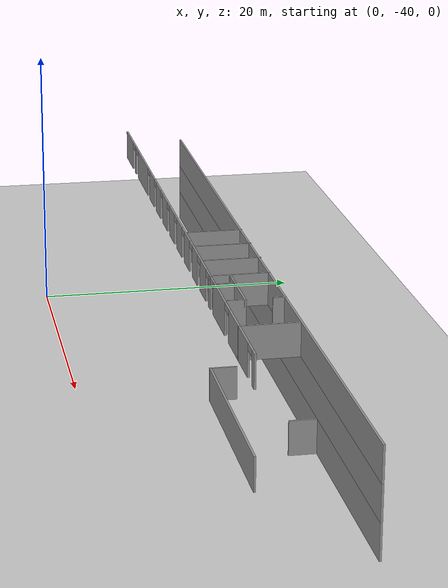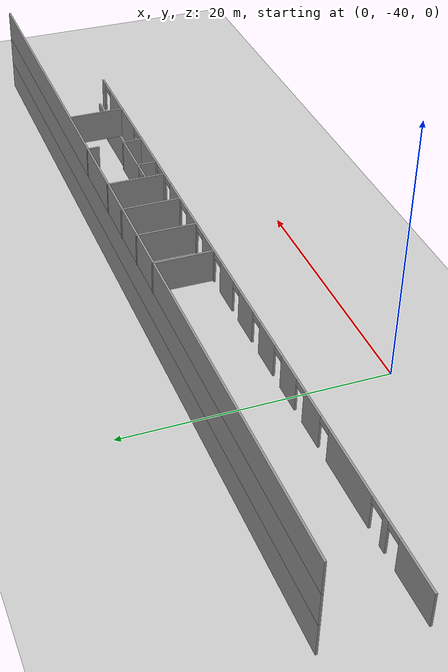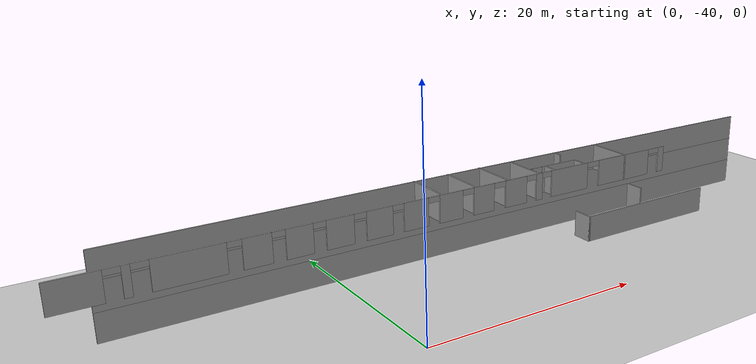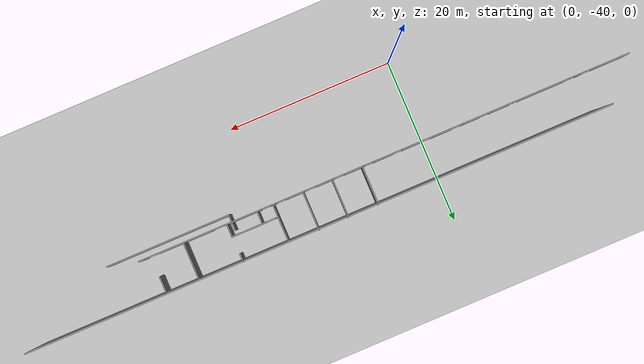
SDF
<sdf version="1.7">
 <world name="default">
  <model name="ground_plane">
   <static>1</static>
   <link name="link">
    <collision name="collision">
     <geometry><plane><normal>0 0 1</normal><size>100 100</size></plane></geometry>
     <surface><friction><ode><mu>100</mu><mu2>50</mu2></ode></friction></surface>
    </collision>
    <visual name="visual">
     <cast_shadows>0</cast_shadows>
     <geometry><plane><normal>0 0 1</normal><size>100 100</size></plane></geometry>
     <material>
      <script><uri>file://media/materials/scripts/gazebo.material</uri><name>Gazebo/Grey</name></script>
     </material>
    </visual>
   </link>
  </model>
  <model name="Anselm_Turmeda">
   <pose>-32.7988 -2.37459 0 0 -0 0</pose>
   <link name="Wall_106">
    <pose>38.1826 -27.4319 5 0 -0 3.14159</pose>
    <visual name="Wall_106_Visual_0">
     <pose>-28.3771 0 1.25 0 -0 0</pose>
     <geometry><box><size>0.745891 0.15 2.5</size></box></geometry>
     <material>
      <script><uri>file://media/materials/scripts/gazebo.material</uri><name>Gazebo/Grey</name></script>
      <ambient>1 1 1 1</ambient>
     </material>
     <meta><layer>2</layer></meta>
    </visual>
    <collision name="Wall_106_Collision_0">
     <geometry><box><size>0.745891 0.15 2.5</size></box></geometry>
     <pose>-28.3771 0 1.25 0 -0 0</pose>
    </collision>
    <visual name="Wall_106_Visual_1">
     <pose>-23.4274 0 1.25 0 -0 0</pose>
     <geometry><box><size>6.45543 0.15 2.5</size></box></geometry>
     <material>
      <script><uri>file://media/materials/scripts/gazebo.material</uri><name>Gazebo/Grey</name></script>
      <ambient>1 1 1 1</ambient>
     </material>
     <meta><layer>2</layer></meta>
    </visual>
    <collision name="Wall_106_Collision_1">
     <geometry><box><size>6.45543 0.15 2.5</size></box></geometry>
     <pose>-23.4274 0 1.25 0 -0 0</pose>
    </collision>
    <visual name="Wall_106_Visual_2">
     <pose>-16.5905 0 1.25 0 -0 0</pose>
     <geometry><box><size>4.3493 0.15 2.5</size></box></geometry>
     <material>
      <script><uri>file://media/materials/scripts/gazebo.material</uri><name>Gazebo/Grey</name></script>
      <ambient>1 1 1 1</ambient>
     </material>
     <meta><layer>2</layer></meta>
    </visual>
    <collision name="Wall_106_Collision_2">
     <geometry><box><size>4.3493 0.15 2.5</size></box></geometry>
     <pose>-16.5905 0 1.25 0 -0 0</pose>
    </collision>
    <visual name="Wall_106_Visual_3">
     <pose>-12.9983 0 1.25 0 -0 0</pose>
     <geometry><box><size>0.692963 0.15 2.5</size></box></geometry>
     <material>
      <script><uri>file://media/materials/scripts/gazebo.material</uri><name>Gazebo/Grey</name></script>
      <ambient>1 1 1 1</ambient>
     </material>
     <meta><layer>2</layer></meta>
    </visual>
    <collision name="Wall_106_Collision_3">
     <geometry><box><size>0.692963 0.15 2.5</size></box></geometry>
     <pose>-12.9983 0 1.25 0 -0 0</pose>
    </collision>
    <visual name="Wall_106_Visual_4">
     <pose>-10.3843 0 1.25 0 -0 0</pose>
     <geometry><box><size>2.35007 0.15 2.5</size></box></geometry>
     <material>
      <script><uri>file://media/materials/scripts/gazebo.material</uri><name>Gazebo/Grey</name></script>
      <ambient>1 1 1 1</ambient>
     </material>
     <meta><layer>2</layer></meta>
    </visual>
    <collision name="Wall_106_Collision_4">
     <geometry><box><size>2.35007 0.15 2.5</size></box></geometry>
     <pose>-10.3843 0 1.25 0 -0 0</pose>
    </collision>
    <visual name="Wall_106_Visual_5">
     <pose>-6.89369 0 1.25 0 -0 0</pose>
     <geometry><box><size>2.14695 0.15 2.5</size></box></geometry>
     <material>
      <script><uri>file://media/materials/scripts/gazebo.material</uri><name>Gazebo/Grey</name></script>
      <ambient>1 1 1 1</ambient>
     </material>
     <meta><layer>2</layer></meta>
    </visual>
    <collision name="Wall_106_Collision_5">
     <geometry><box><size>2.14695 0.15 2.5</size></box></geometry>
     <pose>-6.89369 0 1.25 0 -0 0</pose>
    </collision>
    <visual name="Wall_106_Visual_6">
     <pose>-3.48859 0 1.25 0 -0 0</pose>
     <geometry><box><size>2.35007 0.15 2.5</size></box></geometry>
     <material>
      <script><uri>file://media/materials/scripts/gazebo.material</uri><name>Gazebo/Grey</name></script>
      <ambient>1 1 1 1</ambient>
     </material>
     <meta><layer>2</layer></meta>
    </visual>
    <collision name="Wall_106_Collision_6">
     <geometry><box><size>2.35007 0.15 2.5</size></box></geometry>
     <pose>-3.48859 0 1.25 0 -0 0</pose>
    </collision>
    <visual name="Wall_106_Visual_7">
     <pose>-0.014008 0 1.25 0 -0 0</pose>
     <geometry><box><size>2.37146 0.15 2.5</size></box></geometry>
     <material>
      <script><uri>file://media/materials/scripts/gazebo.material</uri><name>Gazebo/Grey</name></script>
      <ambient>1 1 1 1</ambient>
     </material>
     <meta><layer>2</layer></meta>
    </visual>
    <collision name="Wall_106_Collision_7">
     <geometry><box><size>2.37146 0.15 2.5</size></box></geometry>
     <pose>-0.014008 0 1.25 0 -0 0</pose>
    </collision>
    <visual name="Wall_106_Visual_8">
     <pose>3.4285 0 1.25 0 -0 0</pose>
     <geometry><box><size>2.41422 0.15 2.5</size></box></geometry>
     <material>
      <script><uri>file://media/materials/scripts/gazebo.material</uri><name>Gazebo/Grey</name></script>
      <ambient>1 1 1 1</ambient>
     </material>
     <meta><layer>2</layer></meta>
    </visual>
    <collision name="Wall_106_Collision_8">
     <geometry><box><size>2.41422 0.15 2.5</size></box></geometry>
     <pose>3.4285 0 1.25 0 -0 0</pose>
    </collision>
    <visual name="Wall_106_Visual_9">
     <pose>6.96189 0 1.25 0 -0 0</pose>
     <geometry><box><size>2.42491 0.15 2.5</size></box></geometry>
     <material>
      <script><uri>file://media/materials/scripts/gazebo.material</uri><name>Gazebo/Grey</name></script>
      <ambient>1 1 1 1</ambient>
     </material>
     <meta><layer>2</layer></meta>
    </visual>
    <collision name="Wall_106_Collision_9">
     <geometry><box><size>2.42491 0.15 2.5</size></box></geometry>
     <pose>6.96189 0 1.25 0 -0 0</pose>
    </collision>
    <visual name="Wall_106_Visual_10">
     <pose>10.4097 0 1.25 0 -0 0</pose>
     <geometry><box><size>2.28593 0.15 2.5</size></box></geometry>
     <material>
      <script><uri>file://media/materials/scripts/gazebo.material</uri><name>Gazebo/Grey</name></script>
      <ambient>1 1 1 1</ambient>
     </material>
     <meta><layer>2</layer></meta>
    </visual>
    <collision name="Wall_106_Collision_10">
     <geometry><box><size>2.28593 0.15 2.5</size></box></geometry>
     <pose>10.4097 0 1.25 0 -0 0</pose>
    </collision>
    <visual name="Wall_106_Visual_11">
     <pose>13.8148 0 1.25 0 -0 0</pose>
     <geometry><box><size>2.33938 0.15 2.5</size></box></geometry>
     <material>
      <script><uri>file://media/materials/scripts/gazebo.material</uri><name>Gazebo/Grey</name></script>
      <ambient>1 1 1 1</ambient>
     </material>
     <meta><layer>2</layer></meta>
    </visual>
    <collision name="Wall_106_Collision_11">
     <geometry><box><size>2.33938 0.15 2.5</size></box></geometry>
     <pose>13.8148 0 1.25 0 -0 0</pose>
    </collision>
    <visual name="Wall_106_Visual_12">
     <pose>18.9198 0 1.25 0 -0 0</pose>
     <geometry><box><size>5.55739 0.15 2.5</size></box></geometry>
     <material>
      <script><uri>file://media/materials/scripts/gazebo.material</uri><name>Gazebo/Grey</name></script>
      <ambient>1 1 1 1</ambient>
     </material>
     <meta><layer>2</layer></meta>
    </visual>
    <collision name="Wall_106_Collision_12">
     <geometry><box><size>5.55739 0.15 2.5</size></box></geometry>
     <pose>18.9198 0 1.25 0 -0 0</pose>
    </collision>
    <visual name="Wall_106_Visual_13">
     <pose>23.3138 0 1.25 0 -0 0</pose>
     <geometry><box><size>0.618127 0.15 2.5</size></box></geometry>
     <material>
      <script><uri>file://media/materials/scripts/gazebo.material</uri><name>Gazebo/Grey</name></script>
      <ambient>1 1 1 1</ambient>
     </material>
     <meta><layer>2</layer></meta>
    </visual>
    <collision name="Wall_106_Collision_13">
     <geometry><box><size>0.618127 0.15 2.5</size></box></geometry>
     <pose>23.3138 0 1.25 0 -0 0</pose>
    </collision>
    <visual name="Wall_106_Visual_14">
     <pose>26.8075 0 1.25 0 -0 0</pose>
     <geometry><box><size>3.885 0.15 2.5</size></box></geometry>
     <material>
      <script><uri>file://media/materials/scripts/gazebo.material</uri><name>Gazebo/Grey</name></script>
      <ambient>1 1 1 1</ambient>
     </material>
     <meta><layer>2</layer></meta>
    </visual>
    <collision name="Wall_106_Collision_14">
     <geometry><box><size>3.885 0.15 2.5</size></box></geometry>
     <pose>26.8075 0 1.25 0 -0 0</pose>
    </collision>
    <visual name="Wall_106_Visual_15">
     <pose>-27.3296 0 2.25 0 -0 0</pose>
     <geometry><box><size>1.34902 0.15 0.5</size></box></geometry>
     <material>
      <script><uri>file://media/materials/scripts/gazebo.material</uri><name>Gazebo/Grey</name></script>
      <ambient>1 1 1 1</ambient>
     </material>
     <meta><layer>2</layer></meta>
    </visual>
    <collision name="Wall_106_Collision_15">
     <geometry><box><size>1.34902 0.15 0.5</size></box></geometry>
     <pose>-27.3296 0 2.25 0 -0 0</pose>
    </collision>
    <visual name="Wall_106_Visual_16">
     <pose>-19.4824 0 2.25 0 -0 0</pose>
     <geometry><box><size>1.43455 0.15 0.5</size></box></geometry>
     <material>
      <script><uri>file://media/materials/scripts/gazebo.material</uri><name>Gazebo/Grey</name></script>
      <ambient>1 1 1 1</ambient>
     </material>
     <meta><layer>2</layer></meta>
    </visual>
    <collision name="Wall_106_Collision_16">
     <geometry><box><size>1.43455 0.15 0.5</size></box></geometry>
     <pose>-19.4824 0 2.25 0 -0 0</pose>
    </collision>
    <visual name="Wall_106_Visual_17">
     <pose>-13.8803 0 2.25 0 -0 0</pose>
     <geometry><box><size>1.07106 0.15 0.5</size></box></geometry>
     <material>
      <script><uri>file://media/materials/scripts/gazebo.material</uri><name>Gazebo/Grey</name></script>
      <ambient>1 1 1 1</ambient>
     </material>
     <meta><layer>2</layer></meta>
    </visual>
    <collision name="Wall_106_Collision_17">
     <geometry><box><size>1.07106 0.15 0.5</size></box></geometry>
     <pose>-13.8803 0 2.25 0 -0 0</pose>
    </collision>
    <visual name="Wall_106_Visual_18">
     <pose>-12.1056 0 2.25 0 -0 0</pose>
     <geometry><box><size>1.09244 0.15 0.5</size></box></geometry>
     <material>
      <script><uri>file://media/materials/scripts/gazebo.material</uri><name>Gazebo/Grey</name></script>
      <ambient>1 1 1 1</ambient>
     </material>
     <meta><layer>2</layer></meta>
    </visual>
    <collision name="Wall_106_Collision_18">
     <geometry><box><size>1.09244 0.15 0.5</size></box></geometry>
     <pose>-12.1056 0 2.25 0 -0 0</pose>
    </collision>
    <visual name="Wall_106_Visual_19">
     <pose>-8.58822 0 2.25 0 -0 0</pose>
     <geometry><box><size>1.24211 0.15 0.5</size></box></geometry>
     <material>
      <script><uri>file://media/materials/scripts/gazebo.material</uri><name>Gazebo/Grey</name></script>
      <ambient>1 1 1 1</ambient>
     </material>
     <meta><layer>2</layer></meta>
    </visual>
    <collision name="Wall_106_Collision_19">
     <geometry><box><size>1.24211 0.15 0.5</size></box></geometry>
     <pose>-8.58822 0 2.25 0 -0 0</pose>
    </collision>
    <visual name="Wall_106_Visual_20">
     <pose>-5.24192 0 2.25 0 -0 0</pose>
     <geometry><box><size>1.15658 0.15 0.5</size></box></geometry>
     <material>
      <script><uri>file://media/materials/scripts/gazebo.material</uri><name>Gazebo/Grey</name></script>
      <ambient>1 1 1 1</ambient>
     </material>
     <meta><layer>2</layer></meta>
    </visual>
    <collision name="Wall_106_Collision_20">
     <geometry><box><size>1.15658 0.15 0.5</size></box></geometry>
     <pose>-5.24192 0 2.25 0 -0 0</pose>
    </collision>
    <visual name="Wall_106_Visual_21">
     <pose>-1.75665 0 2.25 0 -0 0</pose>
     <geometry><box><size>1.11382 0.15 0.5</size></box></geometry>
     <material>
      <script><uri>file://media/materials/scripts/gazebo.material</uri><name>Gazebo/Grey</name></script>
      <ambient>1 1 1 1</ambient>
     </material>
     <meta><layer>2</layer></meta>
    </visual>
    <collision name="Wall_106_Collision_21">
     <geometry><box><size>1.11382 0.15 0.5</size></box></geometry>
     <pose>-1.75665 0 2.25 0 -0 0</pose>
    </collision>
    <visual name="Wall_106_Visual_22">
     <pose>1.69656 0 2.25 0 -0 0</pose>
     <geometry><box><size>1.04967 0.15 0.5</size></box></geometry>
     <material>
      <script><uri>file://media/materials/scripts/gazebo.material</uri><name>Gazebo/Grey</name></script>
      <ambient>1 1 1 1</ambient>
     </material>
     <meta><layer>2</layer></meta>
    </visual>
    <collision name="Wall_106_Collision_22">
     <geometry><box><size>1.04967 0.15 0.5</size></box></geometry>
     <pose>1.69656 0 2.25 0 -0 0</pose>
    </collision>
    <visual name="Wall_106_Visual_23">
     <pose>5.19252 0 2.25 0 -0 0</pose>
     <geometry><box><size>1.11382 0.15 0.5</size></box></geometry>
     <material>
      <script><uri>file://media/materials/scripts/gazebo.material</uri><name>Gazebo/Grey</name></script>
      <ambient>1 1 1 1</ambient>
     </material>
     <meta><layer>2</layer></meta>
    </visual>
    <collision name="Wall_106_Collision_23">
     <geometry><box><size>1.11382 0.15 0.5</size></box></geometry>
     <pose>5.19252 0 2.25 0 -0 0</pose>
    </collision>
    <visual name="Wall_106_Visual_24">
     <pose>8.72057 0 2.25 0 -0 0</pose>
     <geometry><box><size>1.09244 0.15 0.5</size></box></geometry>
     <material>
      <script><uri>file://media/materials/scripts/gazebo.material</uri><name>Gazebo/Grey</name></script>
      <ambient>1 1 1 1</ambient>
     </material>
     <meta><layer>2</layer></meta>
    </visual>
    <collision name="Wall_106_Collision_24">
     <geometry><box><size>1.09244 0.15 0.5</size></box></geometry>
     <pose>8.72057 0 2.25 0 -0 0</pose>
    </collision>
    <visual name="Wall_106_Visual_25">
     <pose>12.0989 0 2.25 0 -0 0</pose>
     <geometry><box><size>1.09244 0.15 0.5</size></box></geometry>
     <material>
      <script><uri>file://media/materials/scripts/gazebo.material</uri><name>Gazebo/Grey</name></script>
      <ambient>1 1 1 1</ambient>
     </material>
     <meta><layer>2</layer></meta>
    </visual>
    <collision name="Wall_106_Collision_25">
     <geometry><box><size>1.09244 0.15 0.5</size></box></geometry>
     <pose>12.0989 0 2.25 0 -0 0</pose>
    </collision>
    <visual name="Wall_106_Visual_26">
     <pose>15.5628 0 2.25 0 -0 0</pose>
     <geometry><box><size>1.15658 0.15 0.5</size></box></geometry>
     <material>
      <script><uri>file://media/materials/scripts/gazebo.material</uri><name>Gazebo/Grey</name></script>
      <ambient>1 1 1 1</ambient>
     </material>
     <meta><layer>2</layer></meta>
    </visual>
    <collision name="Wall_106_Collision_26">
     <geometry><box><size>1.15658 0.15 0.5</size></box></geometry>
     <pose>15.5628 0 2.25 0 -0 0</pose>
    </collision>
    <visual name="Wall_106_Visual_27">
     <pose>22.3516 0 2.25 0 -0 0</pose>
     <geometry><box><size>1.30626 0.15 0.5</size></box></geometry>
     <material>
      <script><uri>file://media/materials/scripts/gazebo.material</uri><name>Gazebo/Grey</name></script>
      <ambient>1 1 1 1</ambient>
     </material>
     <meta><layer>2</layer></meta>
    </visual>
    <collision name="Wall_106_Collision_27">
     <geometry><box><size>1.30626 0.15 0.5</size></box></geometry>
     <pose>22.3516 0 2.25 0 -0 0</pose>
    </collision>
    <visual name="Wall_106_Visual_28">
     <pose>24.2439 0 2.25 0 -0 0</pose>
     <geometry><box><size>1.24211 0.15 0.5</size></box></geometry>
     <material>
      <script><uri>file://media/materials/scripts/gazebo.material</uri><name>Gazebo/Grey</name></script>
      <ambient>1 1 1 1</ambient>
     </material>
     <meta><layer>2</layer></meta>
    </visual>
    <collision name="Wall_106_Collision_28">
     <geometry><box><size>1.24211 0.15 0.5</size></box></geometry>
     <pose>24.2439 0 2.25 0 -0 0</pose>
    </collision>
   </link>
   <link name="Wall_191">
    <collision name="Wall_191_Collision">
     <geometry><box><size>4.5 0.15 2.5</size></box></geometry>
     <pose>0 0 1.25 0 -0 0</pose>
    </collision>
    <visual name="Wall_191_Visual">
     <pose>0 0 1.25 0 -0 0</pose>
     <geometry><box><size>4.5 0.15 2.5</size></box></geometry>
     <material>
      <script><uri>file://media/materials/scripts/gazebo.material</uri><name>Gazebo/Grey</name></script>
      <ambient>1 1 1 1</ambient>
     </material>
     <meta><layer>2</layer></meta>
    </visual>
    <pose>40.7358 -25.1971 5 0 -0 -1.5708</pose>
   </link>
   <link name="Wall_193">
    <collision name="Wall_193_Collision">
     <geometry><box><size>4.5 0.15 2.5</size></box></geometry>
     <pose>0 0 1.25 0 -0 0</pose>
    </collision>
    <visual name="Wall_193_Visual">
     <pose>0 0 1.25 0 -0 0</pose>
     <geometry><box><size>4.5 0.15 2.5</size></box></geometry>
     <material>
      <script><uri>file://media/materials/scripts/gazebo.material</uri><name>Gazebo/Grey</name></script>
      <ambient>1 1 1 1</ambient>
     </material>
     <meta><layer>2</layer></meta>
    </visual>
    <pose>44.2473 -25.1971 5 0 -0 -1.5708</pose>
   </link>
   <link name="Wall_195">
    <collision name="Wall_195_Collision">
     <geometry><box><size>4.5 0.15 2.5</size></box></geometry>
     <pose>0 0 1.25 0 -0 0</pose>
    </collision>
    <visual name="Wall_195_Visual">
     <pose>0 0 1.25 0 -0 0</pose>
     <geometry><box><size>4.5 0.15 2.5</size></box></geometry>
     <material>
      <script><uri>file://media/materials/scripts/gazebo.material</uri><name>Gazebo/Grey</name></script>
      <ambient>1 1 1 1</ambient>
     </material>
     <meta><layer>2</layer></meta>
    </visual>
    <pose>47.6847 -25.1723 5 0 -0 -1.5708</pose>
   </link>
   <link name="Wall_197">
    <collision name="Wall_197_Collision">
     <geometry><box><size>4.5 0.15 2.5</size></box></geometry>
     <pose>0 0 1.25 0 -0 0</pose>
    </collision>
    <visual name="Wall_197_Visual">
     <pose>0 0 1.25 0 -0 0</pose>
     <geometry><box><size>4.5 0.15 2.5</size></box></geometry>
     <material>
      <script><uri>file://media/materials/scripts/gazebo.material</uri><name>Gazebo/Grey</name></script>
      <ambient>1 1 1 1</ambient>
     </material>
     <meta><layer>2</layer></meta>
    </visual>
    <pose>51.1962 -25.2218 5 0 -0 -1.5708</pose>
   </link>
   <link name="Wall_201">
    <collision name="Wall_201_Collision">
     <geometry><box><size>4.5 0.15 2.5</size></box></geometry>
     <pose>0 0 1.25 0 -0 0</pose>
    </collision>
    <visual name="Wall_201_Visual">
     <pose>0 0 1.25 0 -0 0</pose>
     <geometry><box><size>4.5 0.15 2.5</size></box></geometry>
     <material>
      <script><uri>file://media/materials/scripts/gazebo.material</uri><name>Gazebo/Grey</name></script>
      <ambient>1 1 1 1</ambient>
     </material>
     <meta><layer>2</layer></meta>
    </visual>
    <pose>61.6813 -25.2713 5 0 -0 -1.5708</pose>
   </link>
   <link name="Wall_203">
    <collision name="Wall_203_Collision">
     <geometry><box><size>1 0.15 2.5</size></box></geometry>
     <pose>0 0 1.25 0 -0 0</pose>
    </collision>
    <visual name="Wall_203_Visual">
     <pose>0 0 1.25 0 -0 0</pose>
     <geometry><box><size>1 0.15 2.5</size></box></geometry>
     <material>
      <script><uri>file://media/materials/scripts/gazebo.material</uri><name>Gazebo/Grey</name></script>
      <ambient>1 1 1 1</ambient>
     </material>
     <meta><layer>2</layer></meta>
    </visual>
    <pose>56.5377 -23.4718 5 0 -0 -1.5708</pose>
   </link>
   <link name="Wall_205">
    <pose>53.9206 -25.9648 5 0 -0 0</pose>
    <visual name="Wall_205_Visual_0">
     <pose>-2.57698 0 1.25 0 -0 0</pose>
     <geometry><box><size>0.346036 0.15 2.5</size></box></geometry>
     <material>
      <script><uri>file://media/materials/scripts/gazebo.material</uri><name>Gazebo/Grey</name></script>
      <ambient>1 1 1 1</ambient>
     </material>
     <meta><layer>2</layer></meta>
    </visual>
    <collision name="Wall_205_Collision_0">
     <geometry><box><size>0.346036 0.15 2.5</size></box></geometry>
     <pose>-2.57698 0 1.25 0 -0 0</pose>
    </collision>
    <visual name="Wall_205_Visual_1">
     <pose>0.729928 0 1.25 0 -0 0</pose>
     <geometry><box><size>4.04014 0.15 2.5</size></box></geometry>
     <material>
      <script><uri>file://media/materials/scripts/gazebo.material</uri><name>Gazebo/Grey</name></script>
      <ambient>1 1 1 1</ambient>
     </material>
     <meta><layer>2</layer></meta>
    </visual>
    <collision name="Wall_205_Collision_1">
     <geometry><box><size>4.04014 0.15 2.5</size></box></geometry>
     <pose>0.729928 0 1.25 0 -0 0</pose>
    </collision>
    <visual name="Wall_205_Visual_2">
     <pose>-1.84705 0 2.25 0 -0 0</pose>
     <geometry><box><size>1.11382 0.15 0.5</size></box></geometry>
     <material>
      <script><uri>file://media/materials/scripts/gazebo.material</uri><name>Gazebo/Grey</name></script>
      <ambient>1 1 1 1</ambient>
     </material>
     <meta><layer>2</layer></meta>
    </visual>
    <collision name="Wall_205_Collision_2">
     <geometry><box><size>1.11382 0.15 0.5</size></box></geometry>
     <pose>-1.84705 0 2.25 0 -0 0</pose>
    </collision>
   </link>
   <link name="Wall_206">
    <collision name="Wall_206_Collision">
     <geometry><box><size>1.5 0.15 2.5</size></box></geometry>
     <pose>0 0 1.25 0 -0 0</pose>
    </collision>
    <visual name="Wall_206_Visual">
     <pose>0 0 1.25 0 -0 0</pose>
     <geometry><box><size>1.5 0.15 2.5</size></box></geometry>
     <material>
      <script><uri>file://media/materials/scripts/gazebo.material</uri><name>Gazebo/Grey</name></script>
      <ambient>1 1 1 1</ambient>
     </material>
     <meta><layer>2</layer></meta>
    </visual>
    <pose>56.5956 -26.6398 5 0 -0 -1.5708</pose>
   </link>
   <link name="Wall_208">
    <collision name="Wall_208_Collision">
     <geometry><box><size>1.5 0.15 2.5</size></box></geometry>
     <pose>0 0 1.25 0 -0 0</pose>
    </collision>
    <visual name="Wall_208_Visual">
     <pose>0 0 1.25 0 -0 0</pose>
     <geometry><box><size>1.5 0.15 2.5</size></box></geometry>
     <material>
      <script><uri>file://media/materials/scripts/gazebo.material</uri><name>Gazebo/Grey</name></script>
      <ambient>1 1 1 1</ambient>
     </material>
     <meta><layer>2</layer></meta>
    </visual>
    <pose>53.0509 -26.6893 5 0 -0 -1.5708</pose>
   </link>
   <link name="Wall_32">
    <collision name="Wall_32_Collision">
     <geometry><box><size>69 0.15 2.5</size></box></geometry>
     <pose>0 0 1.25 0 -0 0</pose>
    </collision>
    <visual name="Wall_32_Visual">
     <pose>0 0 1.25 0 -0 0</pose>
     <geometry><box><size>69 0.15 2.5</size></box></geometry>
     <material>
      <script><uri>file://media/materials/scripts/gazebo.material</uri><name>Gazebo/Grey</name></script>
      <ambient>1 1 1 1</ambient>
     </material>
     <meta><layer>1</layer></meta>
    </visual>
    <pose>47.6487 -23.0725 2.5 0 -0 3.14159</pose>
   </link>
   <link name="Wall_412">
    <collision name="Wall_412_Collision">
     <geometry><box><size>2 0.15 2.5</size></box></geometry>
     <pose>0 0 1.25 0 -0 0</pose>
    </collision>
    <visual name="Wall_412_Visual">
     <pose>0 0 1.25 0 -0 0</pose>
     <geometry><box><size>2 0.15 2.5</size></box></geometry>
     <material>
      <script><uri>file://media/materials/scripts/gazebo.material</uri><name>Gazebo/Grey</name></script>
      <ambient>1 1 1 1</ambient>
     </material>
     <meta><layer>0</layer></meta>
    </visual>
    <pose>56.62 -27.5078 0 0 -0 -1.5708</pose>
   </link>
   <link name="Wall_414">
    <collision name="Wall_414_Collision">
     <geometry><box><size>15.25 0.15 2.5</size></box></geometry>
     <pose>0 0 1.25 0 -0 0</pose>
    </collision>
    <visual name="Wall_414_Visual">
     <pose>0 0 1.25 0 -0 0</pose>
     <geometry><box><size>15.25 0.15 2.5</size></box></geometry>
     <material>
      <script><uri>file://media/materials/scripts/gazebo.material</uri><name>Gazebo/Grey</name></script>
      <ambient>1 1 1 1</ambient>
     </material>
     <meta><layer>0</layer></meta>
    </visual>
    <pose>64.17 -28.4328 0 0 -0 0</pose>
   </link>
   <link name="Wall_423">
    <collision name="Wall_423_Collision">
     <geometry><box><size>2 0.15 2.5</size></box></geometry>
     <pose>0 0 1.25 0 -0 0</pose>
    </collision>
    <visual name="Wall_423_Visual">
     <pose>0 0 1.25 0 -0 0</pose>
     <geometry><box><size>2 0.15 2.5</size></box></geometry>
     <material>
      <script><uri>file://media/materials/scripts/gazebo.material</uri><name>Gazebo/Grey</name></script>
      <ambient>1 1 1 1</ambient>
     </material>
     <meta><layer>0</layer></meta>
    </visual>
    <pose>66.6452 -24.0673 0 0 -0 1.5708</pose>
   </link>
   <link name="Wall_54">
    <collision name="Wall_54_Collision">
     <geometry><box><size>69 0.15 2.5</size></box></geometry>
     <pose>0 0 1.25 0 -0 0</pose>
    </collision>
    <visual name="Wall_54_Visual">
     <pose>0 0 1.25 0 -0 0</pose>
     <geometry><box><size>69 0.15 2.5</size></box></geometry>
     <material>
      <script><uri>file://media/materials/scripts/gazebo.material</uri><name>Gazebo/Grey</name></script>
      <ambient>1 1 1 1</ambient>
     </material>
     <meta><layer>2</layer></meta>
    </visual>
    <pose>47.6487 -23.0725 5 0 -0 3.14159</pose>
   </link>
   <link name="Wall_7">
    <collision name="Wall_7_Collision">
     <geometry><box><size>69 0.15 2.5</size></box></geometry>
     <pose>0 0 1.25 0 -0 0</pose>
    </collision>
    <visual name="Wall_7_Visual">
     <pose>0 0 1.25 0 -0 0</pose>
     <geometry><box><size>69 0.15 2.5</size></box></geometry>
     <material>
      <script><uri>file://media/materials/scripts/gazebo.material</uri><name>Gazebo/Grey</name></script>
      <ambient>1 1 1 1</ambient>
     </material>
     <meta><layer>0</layer></meta>
    </visual>
    <pose>47.6487 -23.0725 0 0 -0 3.14159</pose>
   </link>
   <link name="Wall_99">
    <collision name="Wall_99_Collision">
     <geometry><box><size>69 0.15 2.5</size></box></geometry>
     <pose>0 0 1.25 0 -0 0</pose>
    </collision>
    <visual name="Wall_99_Visual">
     <pose>0 0 1.25 0 -0 0</pose>
     <geometry><box><size>69 0.15 2.5</size></box></geometry>
     <material>
      <script><uri>file://media/materials/scripts/gazebo.material</uri><name>Gazebo/Grey</name></script>
      <ambient>1 1 1 1</ambient>
     </material>
     <meta><layer>2</layer></meta>
    </visual>
    <pose>47.6487 -23.0725 5 0 -0 3.14159</pose>
   </link>
   <static>1</static>
  </model>
 </world>
</sdf>
